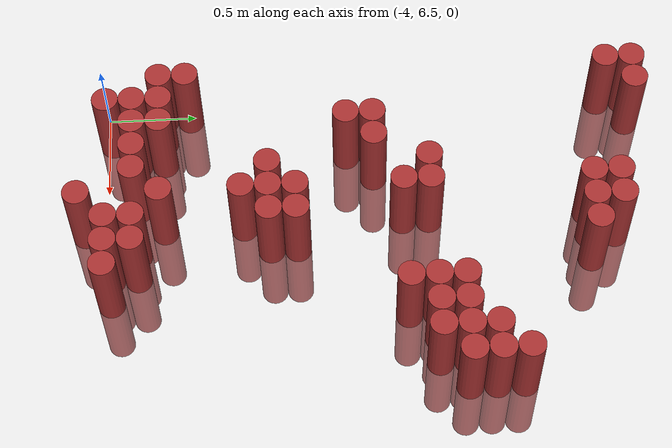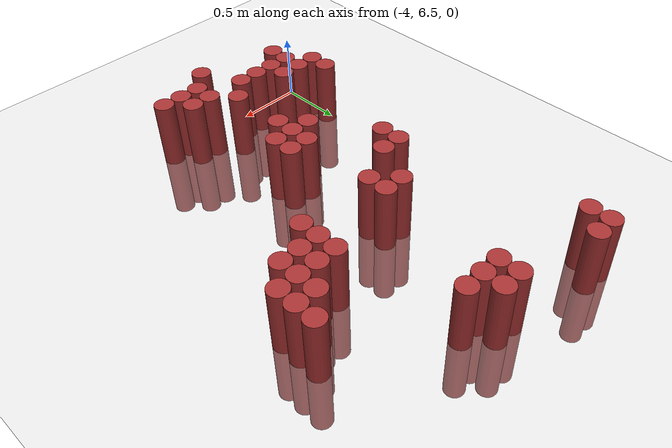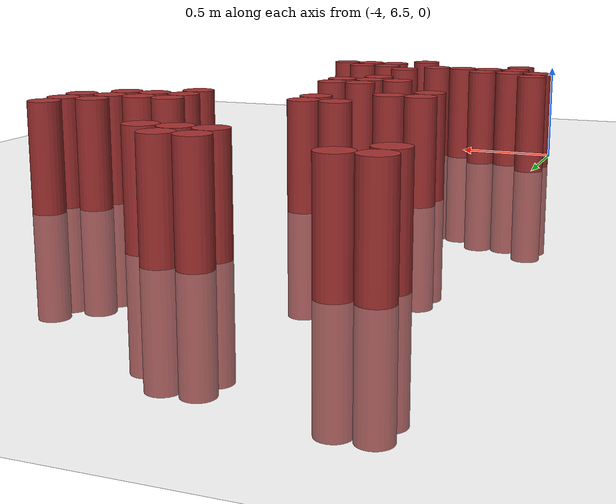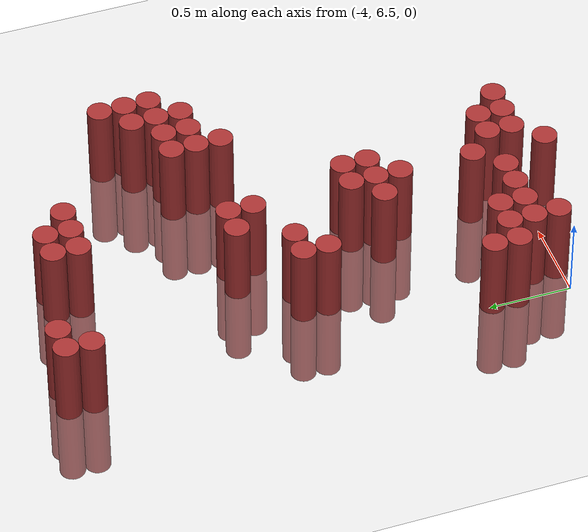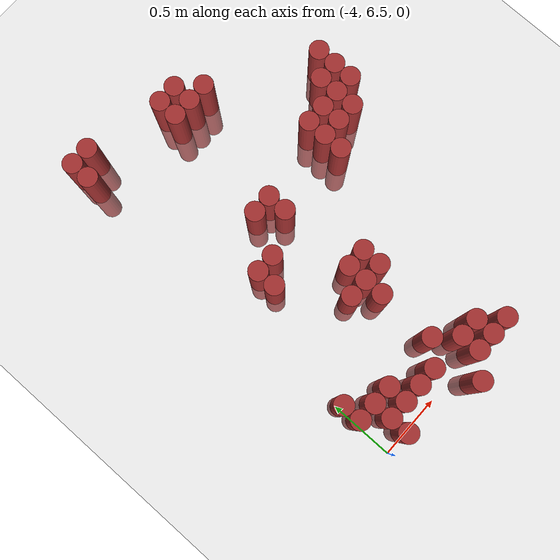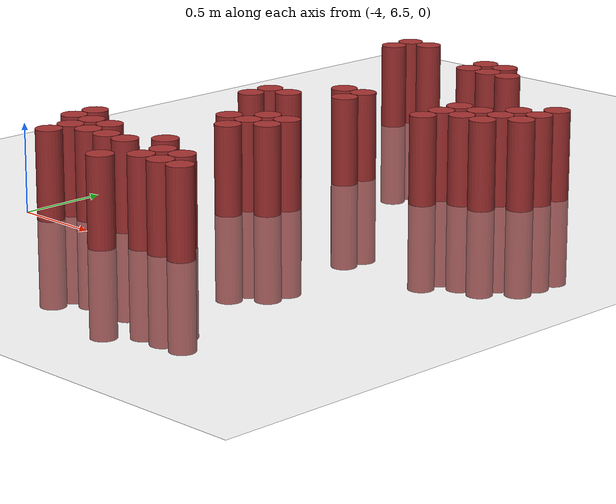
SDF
<sdf version="1.6">
 <world name="default">
  <model name="ground_plane">
   <static>1</static>
   <link name="link">
    <collision name="collision">
     <geometry><plane><normal>0 0 1</normal><size>100 100</size></plane></geometry>
     <surface><friction><ode><mu>100</mu><mu2>50</mu2></ode></friction></surface>
    </collision>
    <visual name="visual">
     <cast_shadows>0</cast_shadows>
     <geometry><plane><normal>0 0 1</normal><size>100 100</size></plane></geometry>
     <material>
      <script><uri>file://media/materials/scripts/gazebo.material</uri><name>Gazebo/Grey</name></script>
     </material>
    </visual>
   </link>
  </model>
  <model name="unit_cylinder_154">
   <static>1</static>
   <pose>-3.975000 6.825000 0.000000 0.000000 0.000000 0.000000</pose>
   <link name="link">
    <inertial>
     <mass>1</mass>
     <inertia><ixx>0.145833</ixx><ixy>0</ixy><ixz>0</ixz><iyy>0.145833</iyy><iyz>0</iyz><izz>0.125</izz></inertia>
    </inertial>
    <collision name="collision">
     <geometry><cylinder><radius>0.075000</radius><length>1</length></cylinder></geometry>
    </collision>
    <visual name="visual">
     <geometry><cylinder><radius>0.075000</radius><length>1</length></cylinder></geometry>
     <material>
      <ambient>0.648000 0.192000 0.192000 1</ambient>
      <diffuse>0.648000 0.192000 0.192000 1</diffuse>
     </material>
     <material>
      <script><name>Gazebo/Grey</name><uri>file://media/materials/scripts/gazebo.material</uri></script>
     </material>
    </visual>
   </link>
  </model>
  <model name="unit_cylinder_155">
   <static>1</static>
   <pose>-3.975000 6.975000 0.000000 0.000000 0.000000 0.000000</pose>
   <link name="link">
    <inertial>
     <mass>1</mass>
     <inertia><ixx>0.145833</ixx><ixy>0</ixy><ixz>0</ixz><iyy>0.145833</iyy><iyz>0</iyz><izz>0.125</izz></inertia>
    </inertial>
    <collision name="collision">
     <geometry><cylinder><radius>0.075000</radius><length>1</length></cylinder></geometry>
    </collision>
    <visual name="visual">
     <geometry><cylinder><radius>0.075000</radius><length>1</length></cylinder></geometry>
     <material>
      <ambient>0.648000 0.192000 0.192000 1</ambient>
      <diffuse>0.648000 0.192000 0.192000 1</diffuse>
     </material>
     <material>
      <script><name>Gazebo/Grey</name><uri>file://media/materials/scripts/gazebo.material</uri></script>
     </material>
    </visual>
   </link>
  </model>
  <model name="unit_cylinder_156">
   <static>1</static>
   <pose>-3.975000 9.375000 0.000000 0.000000 0.000000 0.000000</pose>
   <link name="link">
    <inertial>
     <mass>1</mass>
     <inertia><ixx>0.145833</ixx><ixy>0</ixy><ixz>0</ixz><iyy>0.145833</iyy><iyz>0</iyz><izz>0.125</izz></inertia>
    </inertial>
    <collision name="collision">
     <geometry><cylinder><radius>0.075000</radius><length>1</length></cylinder></geometry>
    </collision>
    <visual name="visual">
     <geometry><cylinder><radius>0.075000</radius><length>1</length></cylinder></geometry>
     <material>
      <ambient>0.648000 0.192000 0.192000 1</ambient>
      <diffuse>0.648000 0.192000 0.192000 1</diffuse>
     </material>
     <material>
      <script><name>Gazebo/Grey</name><uri>file://media/materials/scripts/gazebo.material</uri></script>
     </material>
    </visual>
   </link>
  </model>
  <model name="unit_cylinder_157">
   <static>1</static>
   <pose>-3.975000 9.525000 0.000000 0.000000 0.000000 0.000000</pose>
   <link name="link">
    <inertial>
     <mass>1</mass>
     <inertia><ixx>0.145833</ixx><ixy>0</ixy><ixz>0</ixz><iyy>0.145833</iyy><iyz>0</iyz><izz>0.125</izz></inertia>
    </inertial>
    <collision name="collision">
     <geometry><cylinder><radius>0.075000</radius><length>1</length></cylinder></geometry>
    </collision>
    <visual name="visual">
     <geometry><cylinder><radius>0.075000</radius><length>1</length></cylinder></geometry>
     <material>
      <ambient>0.648000 0.192000 0.192000 1</ambient>
      <diffuse>0.648000 0.192000 0.192000 1</diffuse>
     </material>
     <material>
      <script><name>Gazebo/Grey</name><uri>file://media/materials/scripts/gazebo.material</uri></script>
     </material>
    </visual>
   </link>
  </model>
  <model name="unit_cylinder_158">
   <static>1</static>
   <pose>-3.825000 6.525000 0.000000 0.000000 0.000000 0.000000</pose>
   <link name="link">
    <inertial>
     <mass>1</mass>
     <inertia><ixx>0.145833</ixx><ixy>0</ixy><ixz>0</ixz><iyy>0.145833</iyy><iyz>0</iyz><izz>0.125</izz></inertia>
    </inertial>
    <collision name="collision">
     <geometry><cylinder><radius>0.075000</radius><length>1</length></cylinder></geometry>
    </collision>
    <visual name="visual">
     <geometry><cylinder><radius>0.075000</radius><length>1</length></cylinder></geometry>
     <material>
      <ambient>0.648000 0.192000 0.192000 1</ambient>
      <diffuse>0.648000 0.192000 0.192000 1</diffuse>
     </material>
     <material>
      <script><name>Gazebo/Grey</name><uri>file://media/materials/scripts/gazebo.material</uri></script>
     </material>
    </visual>
   </link>
  </model>
  <model name="unit_cylinder_159">
   <static>1</static>
   <pose>-3.825000 6.675000 0.000000 0.000000 0.000000 0.000000</pose>
   <link name="link">
    <inertial>
     <mass>1</mass>
     <inertia><ixx>0.145833</ixx><ixy>0</ixy><ixz>0</ixz><iyy>0.145833</iyy><iyz>0</iyz><izz>0.125</izz></inertia>
    </inertial>
    <collision name="collision">
     <geometry><cylinder><radius>0.075000</radius><length>1</length></cylinder></geometry>
    </collision>
    <visual name="visual">
     <geometry><cylinder><radius>0.075000</radius><length>1</length></cylinder></geometry>
     <material>
      <ambient>0.648000 0.192000 0.192000 1</ambient>
      <diffuse>0.648000 0.192000 0.192000 1</diffuse>
     </material>
     <material>
      <script><name>Gazebo/Grey</name><uri>file://media/materials/scripts/gazebo.material</uri></script>
     </material>
    </visual>
   </link>
  </model>
  <model name="unit_cylinder_160">
   <static>1</static>
   <pose>-3.825000 6.825000 0.000000 0.000000 0.000000 0.000000</pose>
   <link name="link">
    <inertial>
     <mass>1</mass>
     <inertia><ixx>0.145833</ixx><ixy>0</ixy><ixz>0</ixz><iyy>0.145833</iyy><iyz>0</iyz><izz>0.125</izz></inertia>
    </inertial>
    <collision name="collision">
     <geometry><cylinder><radius>0.075000</radius><length>1</length></cylinder></geometry>
    </collision>
    <visual name="visual">
     <geometry><cylinder><radius>0.075000</radius><length>1</length></cylinder></geometry>
     <material>
      <ambient>0.648000 0.192000 0.192000 1</ambient>
      <diffuse>0.648000 0.192000 0.192000 1</diffuse>
     </material>
     <material>
      <script><name>Gazebo/Grey</name><uri>file://media/materials/scripts/gazebo.material</uri></script>
     </material>
    </visual>
   </link>
  </model>
  <model name="unit_cylinder_161">
   <static>1</static>
   <pose>-3.825000 9.525000 0.000000 0.000000 0.000000 0.000000</pose>
   <link name="link">
    <inertial>
     <mass>1</mass>
     <inertia><ixx>0.145833</ixx><ixy>0</ixy><ixz>0</ixz><iyy>0.145833</iyy><iyz>0</iyz><izz>0.125</izz></inertia>
    </inertial>
    <collision name="collision">
     <geometry><cylinder><radius>0.075000</radius><length>1</length></cylinder></geometry>
    </collision>
    <visual name="visual">
     <geometry><cylinder><radius>0.075000</radius><length>1</length></cylinder></geometry>
     <material>
      <ambient>0.648000 0.192000 0.192000 1</ambient>
      <diffuse>0.648000 0.192000 0.192000 1</diffuse>
     </material>
     <material>
      <script><name>Gazebo/Grey</name><uri>file://media/materials/scripts/gazebo.material</uri></script>
     </material>
    </visual>
   </link>
  </model>
  <model name="unit_cylinder_162">
   <static>1</static>
   <pose>-3.675000 6.675000 0.000000 0.000000 0.000000 0.000000</pose>
   <link name="link">
    <inertial>
     <mass>1</mass>
     <inertia><ixx>0.145833</ixx><ixy>0</ixy><ixz>0</ixz><iyy>0.145833</iyy><iyz>0</iyz><izz>0.125</izz></inertia>
    </inertial>
    <collision name="collision">
     <geometry><cylinder><radius>0.075000</radius><length>1</length></cylinder></geometry>
    </collision>
    <visual name="visual">
     <geometry><cylinder><radius>0.075000</radius><length>1</length></cylinder></geometry>
     <material>
      <ambient>0.648000 0.192000 0.192000 1</ambient>
      <diffuse>0.648000 0.192000 0.192000 1</diffuse>
     </material>
     <material>
      <script><name>Gazebo/Grey</name><uri>file://media/materials/scripts/gazebo.material</uri></script>
     </material>
    </visual>
   </link>
  </model>
  <model name="unit_cylinder_163">
   <static>1</static>
   <pose>-3.675000 6.825000 0.000000 0.000000 0.000000 0.000000</pose>
   <link name="link">
    <inertial>
     <mass>1</mass>
     <inertia><ixx>0.145833</ixx><ixy>0</ixy><ixz>0</ixz><iyy>0.145833</iyy><iyz>0</iyz><izz>0.125</izz></inertia>
    </inertial>
    <collision name="collision">
     <geometry><cylinder><radius>0.075000</radius><length>1</length></cylinder></geometry>
    </collision>
    <visual name="visual">
     <geometry><cylinder><radius>0.075000</radius><length>1</length></cylinder></geometry>
     <material>
      <ambient>0.648000 0.192000 0.192000 1</ambient>
      <diffuse>0.648000 0.192000 0.192000 1</diffuse>
     </material>
     <material>
      <script><name>Gazebo/Grey</name><uri>file://media/materials/scripts/gazebo.material</uri></script>
     </material>
    </visual>
   </link>
  </model>
  <model name="unit_cylinder_164">
   <static>1</static>
   <pose>-3.675000 7.875000 0.000000 0.000000 0.000000 0.000000</pose>
   <link name="link">
    <inertial>
     <mass>1</mass>
     <inertia><ixx>0.145833</ixx><ixy>0</ixy><ixz>0</ixz><iyy>0.145833</iyy><iyz>0</iyz><izz>0.125</izz></inertia>
    </inertial>
    <collision name="collision">
     <geometry><cylinder><radius>0.075000</radius><length>1</length></cylinder></geometry>
    </collision>
    <visual name="visual">
     <geometry><cylinder><radius>0.075000</radius><length>1</length></cylinder></geometry>
     <material>
      <ambient>0.648000 0.192000 0.192000 1</ambient>
      <diffuse>0.648000 0.192000 0.192000 1</diffuse>
     </material>
     <material>
      <script><name>Gazebo/Grey</name><uri>file://media/materials/scripts/gazebo.material</uri></script>
     </material>
    </visual>
   </link>
  </model>
  <model name="unit_cylinder_165">
   <static>1</static>
   <pose>-3.675000 8.025000 0.000000 0.000000 0.000000 0.000000</pose>
   <link name="link">
    <inertial>
     <mass>1</mass>
     <inertia><ixx>0.145833</ixx><ixy>0</ixy><ixz>0</ixz><iyy>0.145833</iyy><iyz>0</iyz><izz>0.125</izz></inertia>
    </inertial>
    <collision name="collision">
     <geometry><cylinder><radius>0.075000</radius><length>1</length></cylinder></geometry>
    </collision>
    <visual name="visual">
     <geometry><cylinder><radius>0.075000</radius><length>1</length></cylinder></geometry>
     <material>
      <ambient>0.648000 0.192000 0.192000 1</ambient>
      <diffuse>0.648000 0.192000 0.192000 1</diffuse>
     </material>
     <material>
      <script><name>Gazebo/Grey</name><uri>file://media/materials/scripts/gazebo.material</uri></script>
     </material>
    </visual>
   </link>
  </model>
  <model name="unit_cylinder_168">
   <static>1</static>
   <pose>-3.525000 6.675000 0.000000 0.000000 0.000000 0.000000</pose>
   <link name="link">
    <inertial>
     <mass>1</mass>
     <inertia><ixx>0.145833</ixx><ixy>0</ixy><ixz>0</ixz><iyy>0.145833</iyy><iyz>0</iyz><izz>0.125</izz></inertia>
    </inertial>
    <collision name="collision">
     <geometry><cylinder><radius>0.075000</radius><length>1</length></cylinder></geometry>
    </collision>
    <visual name="visual">
     <geometry><cylinder><radius>0.075000</radius><length>1</length></cylinder></geometry>
     <material>
      <ambient>0.648000 0.192000 0.192000 1</ambient>
      <diffuse>0.648000 0.192000 0.192000 1</diffuse>
     </material>
     <material>
      <script><name>Gazebo/Grey</name><uri>file://media/materials/scripts/gazebo.material</uri></script>
     </material>
    </visual>
   </link>
  </model>
  <model name="unit_cylinder_169">
   <static>1</static>
   <pose>-3.525000 8.025000 0.000000 0.000000 0.000000 0.000000</pose>
   <link name="link">
    <inertial>
     <mass>1</mass>
     <inertia><ixx>0.145833</ixx><ixy>0</ixy><ixz>0</ixz><iyy>0.145833</iyy><iyz>0</iyz><izz>0.125</izz></inertia>
    </inertial>
    <collision name="collision">
     <geometry><cylinder><radius>0.075000</radius><length>1</length></cylinder></geometry>
    </collision>
    <visual name="visual">
     <geometry><cylinder><radius>0.075000</radius><length>1</length></cylinder></geometry>
     <material>
      <ambient>0.648000 0.192000 0.192000 1</ambient>
      <diffuse>0.648000 0.192000 0.192000 1</diffuse>
     </material>
     <material>
      <script><name>Gazebo/Grey</name><uri>file://media/materials/scripts/gazebo.material</uri></script>
     </material>
    </visual>
   </link>
  </model>
  <model name="unit_cylinder_174">
   <static>1</static>
   <pose>-3.375000 6.675000 0.000000 0.000000 0.000000 0.000000</pose>
   <link name="link">
    <inertial>
     <mass>1</mass>
     <inertia><ixx>0.145833</ixx><ixy>0</ixy><ixz>0</ixz><iyy>0.145833</iyy><iyz>0</iyz><izz>0.125</izz></inertia>
    </inertial>
    <collision name="collision">
     <geometry><cylinder><radius>0.075000</radius><length>1</length></cylinder></geometry>
    </collision>
    <visual name="visual">
     <geometry><cylinder><radius>0.075000</radius><length>1</length></cylinder></geometry>
     <material>
      <ambient>0.648000 0.192000 0.192000 1</ambient>
      <diffuse>0.648000 0.192000 0.192000 1</diffuse>
     </material>
     <material>
      <script><name>Gazebo/Grey</name><uri>file://media/materials/scripts/gazebo.material</uri></script>
     </material>
    </visual>
   </link>
  </model>
  <model name="unit_cylinder_175">
   <static>1</static>
   <pose>-3.375000 7.425000 0.000000 0.000000 0.000000 0.000000</pose>
   <link name="link">
    <inertial>
     <mass>1</mass>
     <inertia><ixx>0.145833</ixx><ixy>0</ixy><ixz>0</ixz><iyy>0.145833</iyy><iyz>0</iyz><izz>0.125</izz></inertia>
    </inertial>
    <collision name="collision">
     <geometry><cylinder><radius>0.075000</radius><length>1</length></cylinder></geometry>
    </collision>
    <visual name="visual">
     <geometry><cylinder><radius>0.075000</radius><length>1</length></cylinder></geometry>
     <material>
      <ambient>0.648000 0.192000 0.192000 1</ambient>
      <diffuse>0.648000 0.192000 0.192000 1</diffuse>
     </material>
     <material>
      <script><name>Gazebo/Grey</name><uri>file://media/materials/scripts/gazebo.material</uri></script>
     </material>
    </visual>
   </link>
  </model>
  <model name="unit_cylinder_176">
   <static>1</static>
   <pose>-3.375000 8.325000 0.000000 0.000000 0.000000 0.000000</pose>
   <link name="link">
    <inertial>
     <mass>1</mass>
     <inertia><ixx>0.145833</ixx><ixy>0</ixy><ixz>0</ixz><iyy>0.145833</iyy><iyz>0</iyz><izz>0.125</izz></inertia>
    </inertial>
    <collision name="collision">
     <geometry><cylinder><radius>0.075000</radius><length>1</length></cylinder></geometry>
    </collision>
    <visual name="visual">
     <geometry><cylinder><radius>0.075000</radius><length>1</length></cylinder></geometry>
     <material>
      <ambient>0.648000 0.192000 0.192000 1</ambient>
      <diffuse>0.648000 0.192000 0.192000 1</diffuse>
     </material>
     <material>
      <script><name>Gazebo/Grey</name><uri>file://media/materials/scripts/gazebo.material</uri></script>
     </material>
    </visual>
   </link>
  </model>
  <model name="unit_cylinder_180">
   <static>1</static>
   <pose>-3.225000 6.375000 0.000000 0.000000 0.000000 0.000000</pose>
   <link name="link">
    <inertial>
     <mass>1</mass>
     <inertia><ixx>0.145833</ixx><ixy>0</ixy><ixz>0</ixz><iyy>0.145833</iyy><iyz>0</iyz><izz>0.125</izz></inertia>
    </inertial>
    <collision name="collision">
     <geometry><cylinder><radius>0.075000</radius><length>1</length></cylinder></geometry>
    </collision>
    <visual name="visual">
     <geometry><cylinder><radius>0.075000</radius><length>1</length></cylinder></geometry>
     <material>
      <ambient>0.648000 0.192000 0.192000 1</ambient>
      <diffuse>0.648000 0.192000 0.192000 1</diffuse>
     </material>
     <material>
      <script><name>Gazebo/Grey</name><uri>file://media/materials/scripts/gazebo.material</uri></script>
     </material>
    </visual>
   </link>
  </model>
  <model name="unit_cylinder_181">
   <static>1</static>
   <pose>-3.225000 6.825000 0.000000 0.000000 0.000000 0.000000</pose>
   <link name="link">
    <inertial>
     <mass>1</mass>
     <inertia><ixx>0.145833</ixx><ixy>0</ixy><ixz>0</ixz><iyy>0.145833</iyy><iyz>0</iyz><izz>0.125</izz></inertia>
    </inertial>
    <collision name="collision">
     <geometry><cylinder><radius>0.075000</radius><length>1</length></cylinder></geometry>
    </collision>
    <visual name="visual">
     <geometry><cylinder><radius>0.075000</radius><length>1</length></cylinder></geometry>
     <material>
      <ambient>0.648000 0.192000 0.192000 1</ambient>
      <diffuse>0.648000 0.192000 0.192000 1</diffuse>
     </material>
     <material>
      <script><name>Gazebo/Grey</name><uri>file://media/materials/scripts/gazebo.material</uri></script>
     </material>
    </visual>
   </link>
  </model>
  <model name="unit_cylinder_182">
   <static>1</static>
   <pose>-3.225000 7.275000 0.000000 0.000000 0.000000 0.000000</pose>
   <link name="link">
    <inertial>
     <mass>1</mass>
     <inertia><ixx>0.145833</ixx><ixy>0</ixy><ixz>0</ixz><iyy>0.145833</iyy><iyz>0</iyz><izz>0.125</izz></inertia>
    </inertial>
    <collision name="collision">
     <geometry><cylinder><radius>0.075000</radius><length>1</length></cylinder></geometry>
    </collision>
    <visual name="visual">
     <geometry><cylinder><radius>0.075000</radius><length>1</length></cylinder></geometry>
     <material>
      <ambient>0.648000 0.192000 0.192000 1</ambient>
      <diffuse>0.648000 0.192000 0.192000 1</diffuse>
     </material>
     <material>
      <script><name>Gazebo/Grey</name><uri>file://media/materials/scripts/gazebo.material</uri></script>
     </material>
    </visual>
   </link>
  </model>
  <model name="unit_cylinder_183">
   <static>1</static>
   <pose>-3.225000 7.425000 0.000000 0.000000 0.000000 0.000000</pose>
   <link name="link">
    <inertial>
     <mass>1</mass>
     <inertia><ixx>0.145833</ixx><ixy>0</ixy><ixz>0</ixz><iyy>0.145833</iyy><iyz>0</iyz><izz>0.125</izz></inertia>
    </inertial>
    <collision name="collision">
     <geometry><cylinder><radius>0.075000</radius><length>1</length></cylinder></geometry>
    </collision>
    <visual name="visual">
     <geometry><cylinder><radius>0.075000</radius><length>1</length></cylinder></geometry>
     <material>
      <ambient>0.648000 0.192000 0.192000 1</ambient>
      <diffuse>0.648000 0.192000 0.192000 1</diffuse>
     </material>
     <material>
      <script><name>Gazebo/Grey</name><uri>file://media/materials/scripts/gazebo.material</uri></script>
     </material>
    </visual>
   </link>
  </model>
  <model name="unit_cylinder_184">
   <static>1</static>
   <pose>-3.225000 7.575000 0.000000 0.000000 0.000000 0.000000</pose>
   <link name="link">
    <inertial>
     <mass>1</mass>
     <inertia><ixx>0.145833</ixx><ixy>0</ixy><ixz>0</ixz><iyy>0.145833</iyy><iyz>0</iyz><izz>0.125</izz></inertia>
    </inertial>
    <collision name="collision">
     <geometry><cylinder><radius>0.075000</radius><length>1</length></cylinder></geometry>
    </collision>
    <visual name="visual">
     <geometry><cylinder><radius>0.075000</radius><length>1</length></cylinder></geometry>
     <material>
      <ambient>0.648000 0.192000 0.192000 1</ambient>
      <diffuse>0.648000 0.192000 0.192000 1</diffuse>
     </material>
     <material>
      <script><name>Gazebo/Grey</name><uri>file://media/materials/scripts/gazebo.material</uri></script>
     </material>
    </visual>
   </link>
  </model>
  <model name="unit_cylinder_185">
   <static>1</static>
   <pose>-3.225000 8.175000 0.000000 0.000000 0.000000 0.000000</pose>
   <link name="link">
    <inertial>
     <mass>1</mass>
     <inertia><ixx>0.145833</ixx><ixy>0</ixy><ixz>0</ixz><iyy>0.145833</iyy><iyz>0</iyz><izz>0.125</izz></inertia>
    </inertial>
    <collision name="collision">
     <geometry><cylinder><radius>0.075000</radius><length>1</length></cylinder></geometry>
    </collision>
    <visual name="visual">
     <geometry><cylinder><radius>0.075000</radius><length>1</length></cylinder></geometry>
     <material>
      <ambient>0.648000 0.192000 0.192000 1</ambient>
      <diffuse>0.648000 0.192000 0.192000 1</diffuse>
     </material>
     <material>
      <script><name>Gazebo/Grey</name><uri>file://media/materials/scripts/gazebo.material</uri></script>
     </material>
    </visual>
   </link>
  </model>
  <model name="unit_cylinder_186">
   <static>1</static>
   <pose>-3.225000 8.325000 0.000000 0.000000 0.000000 0.000000</pose>
   <link name="link">
    <inertial>
     <mass>1</mass>
     <inertia><ixx>0.145833</ixx><ixy>0</ixy><ixz>0</ixz><iyy>0.145833</iyy><iyz>0</iyz><izz>0.125</izz></inertia>
    </inertial>
    <collision name="collision">
     <geometry><cylinder><radius>0.075000</radius><length>1</length></cylinder></geometry>
    </collision>
    <visual name="visual">
     <geometry><cylinder><radius>0.075000</radius><length>1</length></cylinder></geometry>
     <material>
      <ambient>0.648000 0.192000 0.192000 1</ambient>
      <diffuse>0.648000 0.192000 0.192000 1</diffuse>
     </material>
     <material>
      <script><name>Gazebo/Grey</name><uri>file://media/materials/scripts/gazebo.material</uri></script>
     </material>
    </visual>
   </link>
  </model>
  <model name="unit_cylinder_187">
   <static>1</static>
   <pose>-3.225000 9.225000 0.000000 0.000000 0.000000 0.000000</pose>
   <link name="link">
    <inertial>
     <mass>1</mass>
     <inertia><ixx>0.145833</ixx><ixy>0</ixy><ixz>0</ixz><iyy>0.145833</iyy><iyz>0</iyz><izz>0.125</izz></inertia>
    </inertial>
    <collision name="collision">
     <geometry><cylinder><radius>0.075000</radius><length>1</length></cylinder></geometry>
    </collision>
    <visual name="visual">
     <geometry><cylinder><radius>0.075000</radius><length>1</length></cylinder></geometry>
     <material>
      <ambient>0.648000 0.192000 0.192000 1</ambient>
      <diffuse>0.648000 0.192000 0.192000 1</diffuse>
     </material>
     <material>
      <script><name>Gazebo/Grey</name><uri>file://media/materials/scripts/gazebo.material</uri></script>
     </material>
    </visual>
   </link>
  </model>
  <model name="unit_cylinder_188">
   <static>1</static>
   <pose>-3.225000 9.375000 0.000000 0.000000 0.000000 0.000000</pose>
   <link name="link">
    <inertial>
     <mass>1</mass>
     <inertia><ixx>0.145833</ixx><ixy>0</ixy><ixz>0</ixz><iyy>0.145833</iyy><iyz>0</iyz><izz>0.125</izz></inertia>
    </inertial>
    <collision name="collision">
     <geometry><cylinder><radius>0.075000</radius><length>1</length></cylinder></geometry>
    </collision>
    <visual name="visual">
     <geometry><cylinder><radius>0.075000</radius><length>1</length></cylinder></geometry>
     <material>
      <ambient>0.648000 0.192000 0.192000 1</ambient>
      <diffuse>0.648000 0.192000 0.192000 1</diffuse>
     </material>
     <material>
      <script><name>Gazebo/Grey</name><uri>file://media/materials/scripts/gazebo.material</uri></script>
     </material>
    </visual>
   </link>
  </model>
  <model name="unit_cylinder_189">
   <static>1</static>
   <pose>-3.075000 6.525000 0.000000 0.000000 0.000000 0.000000</pose>
   <link name="link">
    <inertial>
     <mass>1</mass>
     <inertia><ixx>0.145833</ixx><ixy>0</ixy><ixz>0</ixz><iyy>0.145833</iyy><iyz>0</iyz><izz>0.125</izz></inertia>
    </inertial>
    <collision name="collision">
     <geometry><cylinder><radius>0.075000</radius><length>1</length></cylinder></geometry>
    </collision>
    <visual name="visual">
     <geometry><cylinder><radius>0.075000</radius><length>1</length></cylinder></geometry>
     <material>
      <ambient>0.648000 0.192000 0.192000 1</ambient>
      <diffuse>0.648000 0.192000 0.192000 1</diffuse>
     </material>
     <material>
      <script><name>Gazebo/Grey</name><uri>file://media/materials/scripts/gazebo.material</uri></script>
     </material>
    </visual>
   </link>
  </model>
  <model name="unit_cylinder_190">
   <static>1</static>
   <pose>-3.075000 6.675000 0.000000 0.000000 0.000000 0.000000</pose>
   <link name="link">
    <inertial>
     <mass>1</mass>
     <inertia><ixx>0.145833</ixx><ixy>0</ixy><ixz>0</ixz><iyy>0.145833</iyy><iyz>0</iyz><izz>0.125</izz></inertia>
    </inertial>
    <collision name="collision">
     <geometry><cylinder><radius>0.075000</radius><length>1</length></cylinder></geometry>
    </collision>
    <visual name="visual">
     <geometry><cylinder><radius>0.075000</radius><length>1</length></cylinder></geometry>
     <material>
      <ambient>0.648000 0.192000 0.192000 1</ambient>
      <diffuse>0.648000 0.192000 0.192000 1</diffuse>
     </material>
     <material>
      <script><name>Gazebo/Grey</name><uri>file://media/materials/scripts/gazebo.material</uri></script>
     </material>
    </visual>
   </link>
  </model>
  <model name="unit_cylinder_191">
   <static>1</static>
   <pose>-3.075000 7.425000 0.000000 0.000000 0.000000 0.000000</pose>
   <link name="link">
    <inertial>
     <mass>1</mass>
     <inertia><ixx>0.145833</ixx><ixy>0</ixy><ixz>0</ixz><iyy>0.145833</iyy><iyz>0</iyz><izz>0.125</izz></inertia>
    </inertial>
    <collision name="collision">
     <geometry><cylinder><radius>0.075000</radius><length>1</length></cylinder></geometry>
    </collision>
    <visual name="visual">
     <geometry><cylinder><radius>0.075000</radius><length>1</length></cylinder></geometry>
     <material>
      <ambient>0.648000 0.192000 0.192000 1</ambient>
      <diffuse>0.648000 0.192000 0.192000 1</diffuse>
     </material>
     <material>
      <script><name>Gazebo/Grey</name><uri>file://media/materials/scripts/gazebo.material</uri></script>
     </material>
    </visual>
   </link>
  </model>
  <model name="unit_cylinder_192">
   <static>1</static>
   <pose>-3.075000 7.575000 0.000000 0.000000 0.000000 0.000000</pose>
   <link name="link">
    <inertial>
     <mass>1</mass>
     <inertia><ixx>0.145833</ixx><ixy>0</ixy><ixz>0</ixz><iyy>0.145833</iyy><iyz>0</iyz><izz>0.125</izz></inertia>
    </inertial>
    <collision name="collision">
     <geometry><cylinder><radius>0.075000</radius><length>1</length></cylinder></geometry>
    </collision>
    <visual name="visual">
     <geometry><cylinder><radius>0.075000</radius><length>1</length></cylinder></geometry>
     <material>
      <ambient>0.648000 0.192000 0.192000 1</ambient>
      <diffuse>0.648000 0.192000 0.192000 1</diffuse>
     </material>
     <material>
      <script><name>Gazebo/Grey</name><uri>file://media/materials/scripts/gazebo.material</uri></script>
     </material>
    </visual>
   </link>
  </model>
  <model name="unit_cylinder_193">
   <static>1</static>
   <pose>-3.075000 9.225000 0.000000 0.000000 0.000000 0.000000</pose>
   <link name="link">
    <inertial>
     <mass>1</mass>
     <inertia><ixx>0.145833</ixx><ixy>0</ixy><ixz>0</ixz><iyy>0.145833</iyy><iyz>0</iyz><izz>0.125</izz></inertia>
    </inertial>
    <collision name="collision">
     <geometry><cylinder><radius>0.075000</radius><length>1</length></cylinder></geometry>
    </collision>
    <visual name="visual">
     <geometry><cylinder><radius>0.075000</radius><length>1</length></cylinder></geometry>
     <material>
      <ambient>0.648000 0.192000 0.192000 1</ambient>
      <diffuse>0.648000 0.192000 0.192000 1</diffuse>
     </material>
     <material>
      <script><name>Gazebo/Grey</name><uri>file://media/materials/scripts/gazebo.material</uri></script>
     </material>
    </visual>
   </link>
  </model>
  <model name="unit_cylinder_194">
   <static>1</static>
   <pose>-3.075000 9.375000 0.000000 0.000000 0.000000 0.000000</pose>
   <link name="link">
    <inertial>
     <mass>1</mass>
     <inertia><ixx>0.145833</ixx><ixy>0</ixy><ixz>0</ixz><iyy>0.145833</iyy><iyz>0</iyz><izz>0.125</izz></inertia>
    </inertial>
    <collision name="collision">
     <geometry><cylinder><radius>0.075000</radius><length>1</length></cylinder></geometry>
    </collision>
    <visual name="visual">
     <geometry><cylinder><radius>0.075000</radius><length>1</length></cylinder></geometry>
     <material>
      <ambient>0.648000 0.192000 0.192000 1</ambient>
      <diffuse>0.648000 0.192000 0.192000 1</diffuse>
     </material>
     <material>
      <script><name>Gazebo/Grey</name><uri>file://media/materials/scripts/gazebo.material</uri></script>
     </material>
    </visual>
   </link>
  </model>
  <model name="unit_cylinder_195">
   <static>1</static>
   <pose>-2.925000 6.525000 0.000000 0.000000 0.000000 0.000000</pose>
   <link name="link">
    <inertial>
     <mass>1</mass>
     <inertia><ixx>0.145833</ixx><ixy>0</ixy><ixz>0</ixz><iyy>0.145833</iyy><iyz>0</iyz><izz>0.125</izz></inertia>
    </inertial>
    <collision name="collision">
     <geometry><cylinder><radius>0.075000</radius><length>1</length></cylinder></geometry>
    </collision>
    <visual name="visual">
     <geometry><cylinder><radius>0.075000</radius><length>1</length></cylinder></geometry>
     <material>
      <ambient>0.648000 0.192000 0.192000 1</ambient>
      <diffuse>0.648000 0.192000 0.192000 1</diffuse>
     </material>
     <material>
      <script><name>Gazebo/Grey</name><uri>file://media/materials/scripts/gazebo.material</uri></script>
     </material>
    </visual>
   </link>
  </model>
  <model name="unit_cylinder_196">
   <static>1</static>
   <pose>-2.925000 6.675000 0.000000 0.000000 0.000000 0.000000</pose>
   <link name="link">
    <inertial>
     <mass>1</mass>
     <inertia><ixx>0.145833</ixx><ixy>0</ixy><ixz>0</ixz><iyy>0.145833</iyy><iyz>0</iyz><izz>0.125</izz></inertia>
    </inertial>
    <collision name="collision">
     <geometry><cylinder><radius>0.075000</radius><length>1</length></cylinder></geometry>
    </collision>
    <visual name="visual">
     <geometry><cylinder><radius>0.075000</radius><length>1</length></cylinder></geometry>
     <material>
      <ambient>0.648000 0.192000 0.192000 1</ambient>
      <diffuse>0.648000 0.192000 0.192000 1</diffuse>
     </material>
     <material>
      <script><name>Gazebo/Grey</name><uri>file://media/materials/scripts/gazebo.material</uri></script>
     </material>
    </visual>
   </link>
  </model>
  <model name="unit_cylinder_197">
   <static>1</static>
   <pose>-2.925000 9.225000 0.000000 0.000000 0.000000 0.000000</pose>
   <link name="link">
    <inertial>
     <mass>1</mass>
     <inertia><ixx>0.145833</ixx><ixy>0</ixy><ixz>0</ixz><iyy>0.145833</iyy><iyz>0</iyz><izz>0.125</izz></inertia>
    </inertial>
    <collision name="collision">
     <geometry><cylinder><radius>0.075000</radius><length>1</length></cylinder></geometry>
    </collision>
    <visual name="visual">
     <geometry><cylinder><radius>0.075000</radius><length>1</length></cylinder></geometry>
     <material>
      <ambient>0.648000 0.192000 0.192000 1</ambient>
      <diffuse>0.648000 0.192000 0.192000 1</diffuse>
     </material>
     <material>
      <script><name>Gazebo/Grey</name><uri>file://media/materials/scripts/gazebo.material</uri></script>
     </material>
    </visual>
   </link>
  </model>
  <model name="unit_cylinder_198">
   <static>1</static>
   <pose>-2.775000 6.525000 0.000000 0.000000 0.000000 0.000000</pose>
   <link name="link">
    <inertial>
     <mass>1</mass>
     <inertia><ixx>0.145833</ixx><ixy>0</ixy><ixz>0</ixz><iyy>0.145833</iyy><iyz>0</iyz><izz>0.125</izz></inertia>
    </inertial>
    <collision name="collision">
     <geometry><cylinder><radius>0.075000</radius><length>1</length></cylinder></geometry>
    </collision>
    <visual name="visual">
     <geometry><cylinder><radius>0.075000</radius><length>1</length></cylinder></geometry>
     <material>
      <ambient>0.648000 0.192000 0.192000 1</ambient>
      <diffuse>0.648000 0.192000 0.192000 1</diffuse>
     </material>
     <material>
      <script><name>Gazebo/Grey</name><uri>file://media/materials/scripts/gazebo.material</uri></script>
     </material>
    </visual>
   </link>
  </model>
  <model name="unit_cylinder_200">
   <static>1</static>
   <pose>-2.625000 8.175000 0.000000 0.000000 0.000000 0.000000</pose>
   <link name="link">
    <inertial>
     <mass>1</mass>
     <inertia><ixx>0.145833</ixx><ixy>0</ixy><ixz>0</ixz><iyy>0.145833</iyy><iyz>0</iyz><izz>0.125</izz></inertia>
    </inertial>
    <collision name="collision">
     <geometry><cylinder><radius>0.075000</radius><length>1</length></cylinder></geometry>
    </collision>
    <visual name="visual">
     <geometry><cylinder><radius>0.075000</radius><length>1</length></cylinder></geometry>
     <material>
      <ambient>0.648000 0.192000 0.192000 1</ambient>
      <diffuse>0.648000 0.192000 0.192000 1</diffuse>
     </material>
     <material>
      <script><name>Gazebo/Grey</name><uri>file://media/materials/scripts/gazebo.material</uri></script>
     </material>
    </visual>
   </link>
  </model>
  <model name="unit_cylinder_201">
   <static>1</static>
   <pose>-2.625000 8.325000 0.000000 0.000000 0.000000 0.000000</pose>
   <link name="link">
    <inertial>
     <mass>1</mass>
     <inertia><ixx>0.145833</ixx><ixy>0</ixy><ixz>0</ixz><iyy>0.145833</iyy><iyz>0</iyz><izz>0.125</izz></inertia>
    </inertial>
    <collision name="collision">
     <geometry><cylinder><radius>0.075000</radius><length>1</length></cylinder></geometry>
    </collision>
    <visual name="visual">
     <geometry><cylinder><radius>0.075000</radius><length>1</length></cylinder></geometry>
     <material>
      <ambient>0.648000 0.192000 0.192000 1</ambient>
      <diffuse>0.648000 0.192000 0.192000 1</diffuse>
     </material>
     <material>
      <script><name>Gazebo/Grey</name><uri>file://media/materials/scripts/gazebo.material</uri></script>
     </material>
    </visual>
   </link>
  </model>
  <model name="unit_cylinder_202">
   <static>1</static>
   <pose>-2.625000 8.475000 0.000000 0.000000 0.000000 0.000000</pose>
   <link name="link">
    <inertial>
     <mass>1</mass>
     <inertia><ixx>0.145833</ixx><ixy>0</ixy><ixz>0</ixz><iyy>0.145833</iyy><iyz>0</iyz><izz>0.125</izz></inertia>
    </inertial>
    <collision name="collision">
     <geometry><cylinder><radius>0.075000</radius><length>1</length></cylinder></geometry>
    </collision>
    <visual name="visual">
     <geometry><cylinder><radius>0.075000</radius><length>1</length></cylinder></geometry>
     <material>
      <ambient>0.648000 0.192000 0.192000 1</ambient>
      <diffuse>0.648000 0.192000 0.192000 1</diffuse>
     </material>
     <material>
      <script><name>Gazebo/Grey</name><uri>file://media/materials/scripts/gazebo.material</uri></script>
     </material>
    </visual>
   </link>
  </model>
  <model name="unit_cylinder_205">
   <static>1</static>
   <pose>-2.475000 8.325000 0.000000 0.000000 0.000000 0.000000</pose>
   <link name="link">
    <inertial>
     <mass>1</mass>
     <inertia><ixx>0.145833</ixx><ixy>0</ixy><ixz>0</ixz><iyy>0.145833</iyy><iyz>0</iyz><izz>0.125</izz></inertia>
    </inertial>
    <collision name="collision">
     <geometry><cylinder><radius>0.075000</radius><length>1</length></cylinder></geometry>
    </collision>
    <visual name="visual">
     <geometry><cylinder><radius>0.075000</radius><length>1</length></cylinder></geometry>
     <material>
      <ambient>0.648000 0.192000 0.192000 1</ambient>
      <diffuse>0.648000 0.192000 0.192000 1</diffuse>
     </material>
     <material>
      <script><name>Gazebo/Grey</name><uri>file://media/materials/scripts/gazebo.material</uri></script>
     </material>
    </visual>
   </link>
  </model>
  <model name="unit_cylinder_206">
   <static>1</static>
   <pose>-2.475000 8.475000 0.000000 0.000000 0.000000 0.000000</pose>
   <link name="link">
    <inertial>
     <mass>1</mass>
     <inertia><ixx>0.145833</ixx><ixy>0</ixy><ixz>0</ixz><iyy>0.145833</iyy><iyz>0</iyz><izz>0.125</izz></inertia>
    </inertial>
    <collision name="collision">
     <geometry><cylinder><radius>0.075000</radius><length>1</length></cylinder></geometry>
    </collision>
    <visual name="visual">
     <geometry><cylinder><radius>0.075000</radius><length>1</length></cylinder></geometry>
     <material>
      <ambient>0.648000 0.192000 0.192000 1</ambient>
      <diffuse>0.648000 0.192000 0.192000 1</diffuse>
     </material>
     <material>
      <script><name>Gazebo/Grey</name><uri>file://media/materials/scripts/gazebo.material</uri></script>
     </material>
    </visual>
   </link>
  </model>
  <model name="unit_cylinder_209">
   <static>1</static>
   <pose>-2.325000 8.325000 0.000000 0.000000 0.000000 0.000000</pose>
   <link name="link">
    <inertial>
     <mass>1</mass>
     <inertia><ixx>0.145833</ixx><ixy>0</ixy><ixz>0</ixz><iyy>0.145833</iyy><iyz>0</iyz><izz>0.125</izz></inertia>
    </inertial>
    <collision name="collision">
     <geometry><cylinder><radius>0.075000</radius><length>1</length></cylinder></geometry>
    </collision>
    <visual name="visual">
     <geometry><cylinder><radius>0.075000</radius><length>1</length></cylinder></geometry>
     <material>
      <ambient>0.648000 0.192000 0.192000 1</ambient>
      <diffuse>0.648000 0.192000 0.192000 1</diffuse>
     </material>
     <material>
      <script><name>Gazebo/Grey</name><uri>file://media/materials/scripts/gazebo.material</uri></script>
     </material>
    </visual>
   </link>
  </model>
  <model name="unit_cylinder_210">
   <static>1</static>
   <pose>-2.325000 8.475000 0.000000 0.000000 0.000000 0.000000</pose>
   <link name="link">
    <inertial>
     <mass>1</mass>
     <inertia><ixx>0.145833</ixx><ixy>0</ixy><ixz>0</ixz><iyy>0.145833</iyy><iyz>0</iyz><izz>0.125</izz></inertia>
    </inertial>
    <collision name="collision">
     <geometry><cylinder><radius>0.075000</radius><length>1</length></cylinder></geometry>
    </collision>
    <visual name="visual">
     <geometry><cylinder><radius>0.075000</radius><length>1</length></cylinder></geometry>
     <material>
      <ambient>0.648000 0.192000 0.192000 1</ambient>
      <diffuse>0.648000 0.192000 0.192000 1</diffuse>
     </material>
     <material>
      <script><name>Gazebo/Grey</name><uri>file://media/materials/scripts/gazebo.material</uri></script>
     </material>
    </visual>
   </link>
  </model>
  <model name="unit_cylinder_211">
   <static>1</static>
   <pose>-2.325000 8.625000 0.000000 0.000000 0.000000 0.000000</pose>
   <link name="link">
    <inertial>
     <mass>1</mass>
     <inertia><ixx>0.145833</ixx><ixy>0</ixy><ixz>0</ixz><iyy>0.145833</iyy><iyz>0</iyz><izz>0.125</izz></inertia>
    </inertial>
    <collision name="collision">
     <geometry><cylinder><radius>0.075000</radius><length>1</length></cylinder></geometry>
    </collision>
    <visual name="visual">
     <geometry><cylinder><radius>0.075000</radius><length>1</length></cylinder></geometry>
     <material>
      <ambient>0.648000 0.192000 0.192000 1</ambient>
      <diffuse>0.648000 0.192000 0.192000 1</diffuse>
     </material>
     <material>
      <script><name>Gazebo/Grey</name><uri>file://media/materials/scripts/gazebo.material</uri></script>
     </material>
    </visual>
   </link>
  </model>
  <model name="unit_cylinder_214">
   <static>1</static>
   <pose>-2.175000 8.475000 0.000000 0.000000 0.000000 0.000000</pose>
   <link name="link">
    <inertial>
     <mass>1</mass>
     <inertia><ixx>0.145833</ixx><ixy>0</ixy><ixz>0</ixz><iyy>0.145833</iyy><iyz>0</iyz><izz>0.125</izz></inertia>
    </inertial>
    <collision name="collision">
     <geometry><cylinder><radius>0.075000</radius><length>1</length></cylinder></geometry>
    </collision>
    <visual name="visual">
     <geometry><cylinder><radius>0.075000</radius><length>1</length></cylinder></geometry>
     <material>
      <ambient>0.648000 0.192000 0.192000 1</ambient>
      <diffuse>0.648000 0.192000 0.192000 1</diffuse>
     </material>
     <material>
      <script><name>Gazebo/Grey</name><uri>file://media/materials/scripts/gazebo.material</uri></script>
     </material>
    </visual>
   </link>
  </model>
  <model name="unit_cylinder_215">
   <static>1</static>
   <pose>-2.175000 8.625000 0.000000 0.000000 0.000000 0.000000</pose>
   <link name="link">
    <inertial>
     <mass>1</mass>
     <inertia><ixx>0.145833</ixx><ixy>0</ixy><ixz>0</ixz><iyy>0.145833</iyy><iyz>0</iyz><izz>0.125</izz></inertia>
    </inertial>
    <collision name="collision">
     <geometry><cylinder><radius>0.075000</radius><length>1</length></cylinder></geometry>
    </collision>
    <visual name="visual">
     <geometry><cylinder><radius>0.075000</radius><length>1</length></cylinder></geometry>
     <material>
      <ambient>0.648000 0.192000 0.192000 1</ambient>
      <diffuse>0.648000 0.192000 0.192000 1</diffuse>
     </material>
     <material>
      <script><name>Gazebo/Grey</name><uri>file://media/materials/scripts/gazebo.material</uri></script>
     </material>
    </visual>
   </link>
  </model>
  <model name="unit_cylinder_216">
   <static>1</static>
   <pose>-2.175000 8.775000 0.000000 0.000000 0.000000 0.000000</pose>
   <link name="link">
    <inertial>
     <mass>1</mass>
     <inertia><ixx>0.145833</ixx><ixy>0</ixy><ixz>0</ixz><iyy>0.145833</iyy><iyz>0</iyz><izz>0.125</izz></inertia>
    </inertial>
    <collision name="collision">
     <geometry><cylinder><radius>0.075000</radius><length>1</length></cylinder></geometry>
    </collision>
    <visual name="visual">
     <geometry><cylinder><radius>0.075000</radius><length>1</length></cylinder></geometry>
     <material>
      <ambient>0.648000 0.192000 0.192000 1</ambient>
      <diffuse>0.648000 0.192000 0.192000 1</diffuse>
     </material>
     <material>
      <script><name>Gazebo/Grey</name><uri>file://media/materials/scripts/gazebo.material</uri></script>
     </material>
    </visual>
   </link>
  </model>
 </world>
</sdf>
